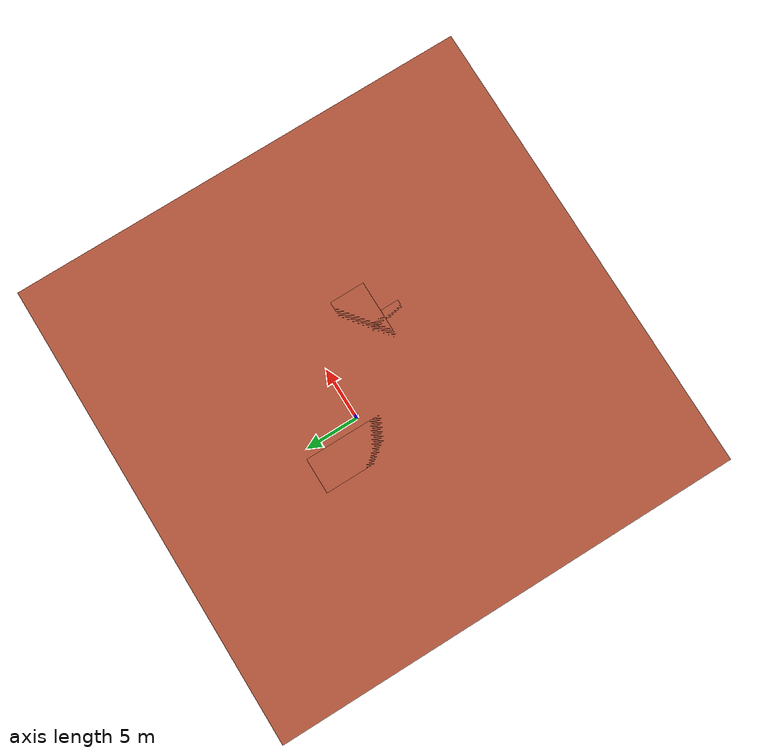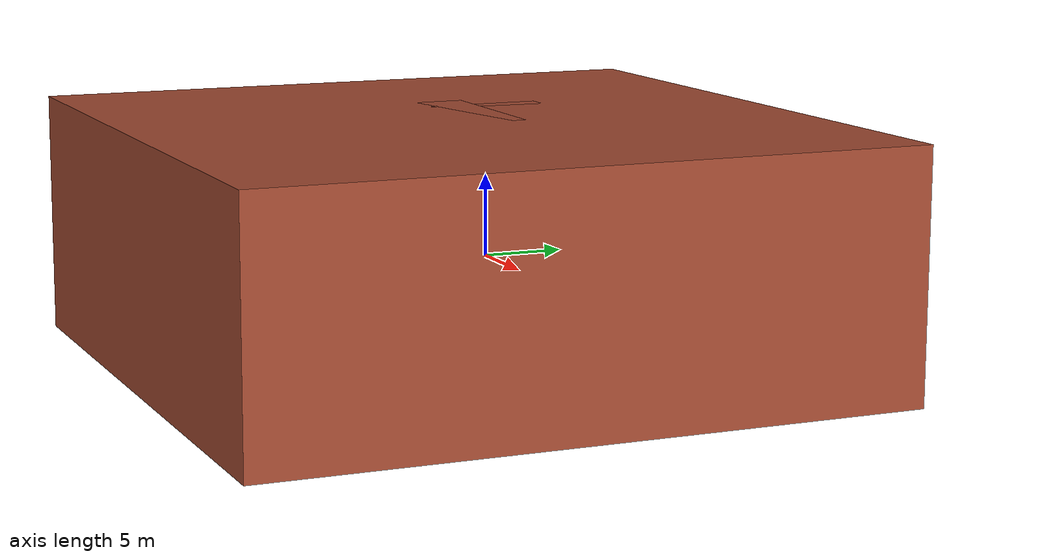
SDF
<?xml version='1.0'?>
<sdf version='1.6'>
  <model name='pipe'>
    <pose frame=''>0.655 -2.40011 0 0 -0 0</pose>
    <link name='Wall_0'>
      <collision name='Wall_0_Collision'>
        <geometry>
          <box>
            <size>40 40 15</size>
          </box>
        </geometry>
        <pose frame=''>0 0 1.25 0 -0 0</pose>
      </collision>
      <visual name='Wall_0_Visual'>
        <pose frame=''>0 0 1.25 0 -0 0</pose>
        <geometry>
          <box>
            <size>40 40 15</size>
          </box>
        </geometry>
        <material>
          <script>
            <uri>file://media/materials/scripts/gazebo.material</uri>
            <name>Gazebo/Bricks</name>
          </script>
          <ambient>0.996078 0.47451 0.0196078 1</ambient>
        </material>
        <meta>
          <layer>0</layer>
        </meta>
      </visual>
      <pose frame=''>1 -0.059891 0 0 -0 0</pose>
    </link>
    <link name='Wall_1'>
      <collision name='Wall_1_Collision'>
        <geometry>
          <box>
            <size>8 3 15</size>
          </box>
        </geometry>
        <pose frame=''>0 0 1.25 0 -0 0</pose>
      </collision>
      <visual name='Wall_1_Visual'>
        <pose frame=''>0 0 1.25 0 -0 0</pose>
        <geometry>
          <box>
            <size>8 3 15</size>
          </box>
        </geometry>
        <material>
          <script>
            <uri>file://media/materials/scripts/gazebo.material</uri>
            <name>Gazebo/Bricks</name>
          </script>
          <ambient>0.996078 0.47451 0.0196078 1</ambient>
        </material>
        <meta>
          <layer>0</layer>
        </meta>
      </visual>
      <pose frame=''>3.425 -0.984891 0 0 -0 -1.5708</pose>
    </link>
    <link name='Wall_2'>
      <collision name='Wall_2_Collision'>
        <geometry>
          <box>
            <size>15 3 15</size>
          </box>
        </geometry>
        <pose frame=''>0 0 1.25 0 -0 0</pose>
      </collision>
      <visual name='Wall_2_Visual'>
        <pose frame=''>0 0 1.25 0 -0 0</pose>
        <geometry>
          <box>
            <size>15 3 15</size>
          </box>
        </geometry>
        <material>
          <script>
            <uri>file://media/materials/scripts/gazebo.material</uri>
            <name>Gazebo/Bricks</name>
          </script>
          <ambient>0.996078 0.47451 0.0196078 1</ambient>
        </material>
        <meta>
          <layer>0</layer>
        </meta>
      </visual>
      <pose frame=''>0 -1.91989 0 0 -0 -3.13867</pose>
    </link>
    <link name='Wall_3'>
      <collision name='Wall_3_Collision'>
        <geometry>
          <box>
            <size>15 3 15</size>
          </box>
        </geometry>
        <pose frame=''>0 0 1.25 0 -0 0</pose>
      </collision>
      <visual name='Wall_3_Visual'>
        <pose frame=''>0 0 1.25 0 -0 0</pose>
        <geometry>
          <box>
            <size>15 3 15</size>
          </box>
        </geometry>
        <material>
          <script>
            <uri>file://media/materials/scripts/gazebo.material</uri>
            <name>Gazebo/Bricks</name>
          </script>
          <ambient>0.996078 0.47451 0.0196078 1</ambient>
        </material>
        <meta>
          <layer>0</layer>
        </meta>
      </visual>
      <pose frame=''>-3.425 0.005109 0 0 -0 1.5708</pose>
    </link>
    <link name='Wall_4'>
      <collision name='Wall_4_Collision'>
        <geometry>
          <box>
            <size>10 3 15</size>
          </box>
        </geometry>
        <pose frame=''>0 0 1.25 0 -0 0</pose>
      </collision>
      <visual name='Wall_4_Visual'>
        <pose frame=''>0 0 1.25 0 -0 0</pose>
        <geometry>
          <box>
            <size>10 3 15</size>
          </box>
        </geometry>
        <material>
          <script>
            <uri>file://media/materials/scripts/gazebo.material</uri>
            <name>Gazebo/Bricks</name>
          </script>
          <ambient>0.996078 0.47451 0.0196078 1</ambient>
        </material>
        <meta>
          <layer>0</layer>
        </meta>
      </visual>
      <pose frame=''>-2 1.93011 0 0 -0 0</pose>
    </link>
    <static>1</static>
  </model>
</sdf>
